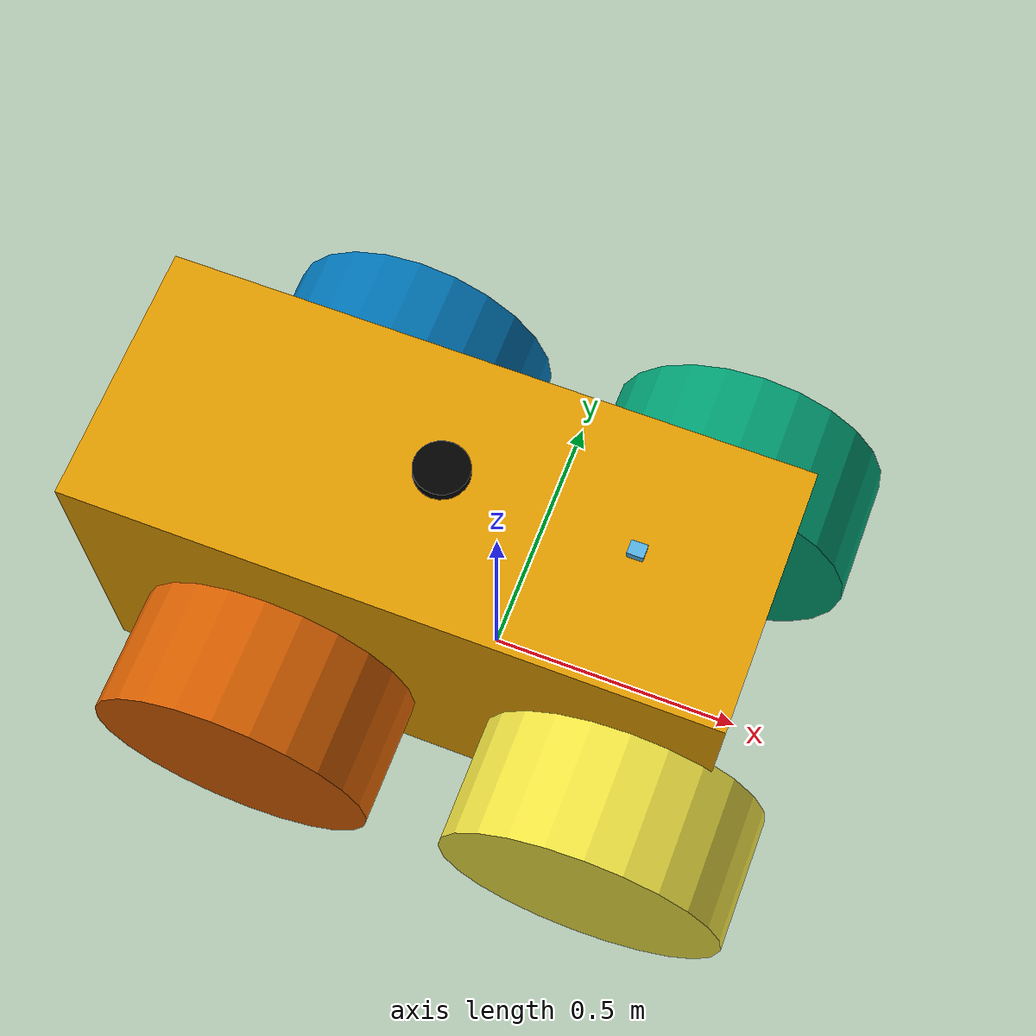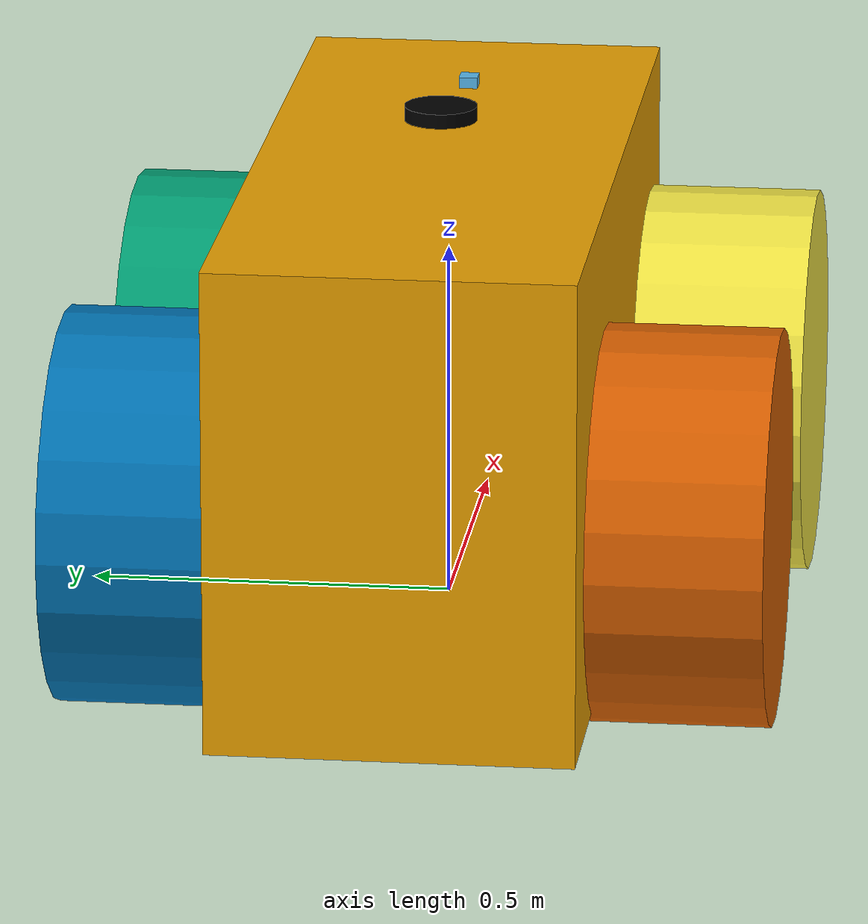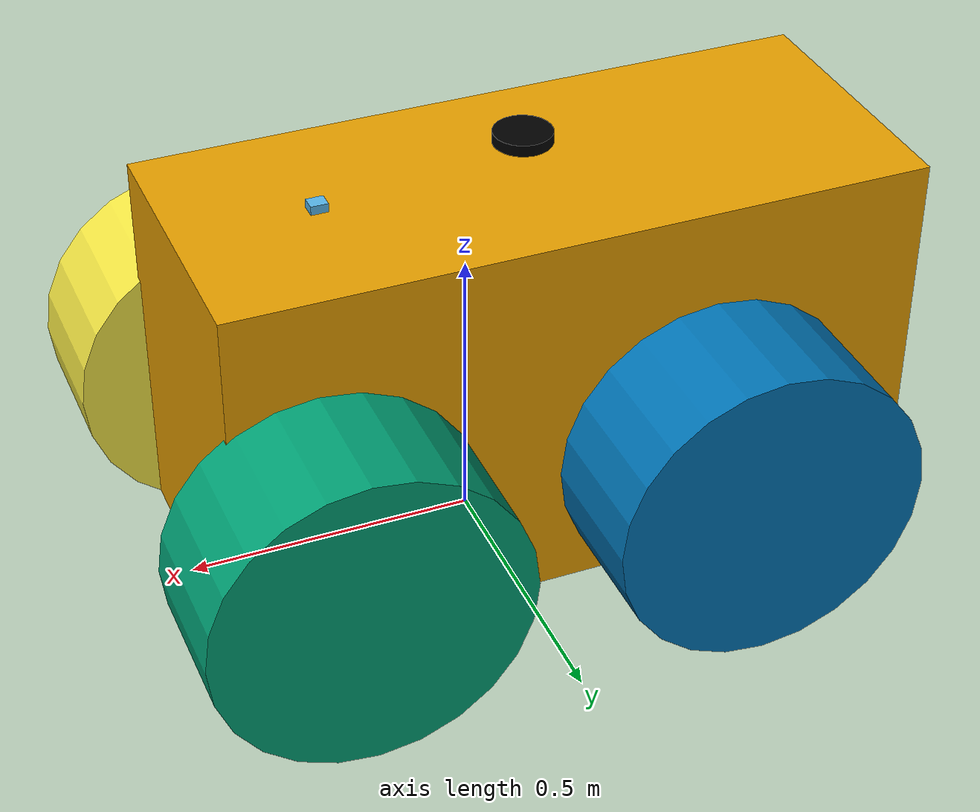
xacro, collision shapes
<?xml version="1.0"?>
<robot xmlns:xacro="http://wiki.ros.org/xacro" name="gen_6_microtractor">

  <!-- Arguments -->
  <xacro:arg name="use_sim" default="false"/>

  <!--                             TUNING DASHBOARD                             -->

  <!-- 1. ROBOT DIMENSIONS (Where the wheels sit) -->
  <xacro:property name="wheel_separation" value="0.72" /> <!-- RESTORED: Physical Track Width for Physics/RViz -->
  <xacro:property name="wheel_wheelbase"  value="0.68" /> <!-- Wheelbase: Front-to-Back distance -->
  <xacro:property name="axle_stagger_x"   value="0.00" /> <!-- Stagger REMOVED -->

  <!-- 2. CHASSIS POSITION (Where the body sits) -->
  <xacro:property name="wheel_xpos"       value="0.11" /> <!-- Moves Blue Chassis BACKWARDS relative to wheels -->

  <!-- 3. WHEEL GEOMETRY -->
  <xacro:property name="wheel_r" value="0.27" />

  <!-- 4. VISUAL MESH CONSTANTS (DO NOT CHANGE unless mesh changes) -->
  <!-- Calculated from Fusion 360 [166.483, 262.155, -606.833] -->
  <xacro:property name="fusion_x" value="0.166483" />
  <xacro:property name="fusion_y" value="0.262155" />
  <xacro:property name="fusion_z" value="-0.606833" />

  <!-- 5. MANUAL VISUAL CORRECTION (Decouples Visuals from Physics) -->
  <!-- PULLS the meshes inward while keeping the Red Physics Boxes at 0.72m -->
  <xacro:property name="visual_manual_y_offset" value="0.2" />
  <!-- 6. LIDAR POSITIONING (Invisible Sensor) -->
  <xacro:property name="lidar_x" value="0.25" />
  <xacro:property name="lidar_y" value="0.0" />
  <xacro:property name="lidar_z" value="0.4" />
  <xacro:property name="lidar_r" value="0.0" />
  <xacro:property name="lidar_p" value="0.0" />
  <xacro:property name="lidar_yaw" value="0.0" />
  <!-- 7. PHYSICS PROPERTIES (Mass in Kg) -->
  <xacro:property name="chassis_mass" value="400.0" /> <!-- Estimate: 100kg tractor body -->
  <xacro:property name="wheel_mass"   value="8" />  <!-- : 8kg per heavy fully inflated tire -->

  <!-- Includes -->

  <!-- Gazebo Sim Control Plugin (Specific for Microtractor) -->
  <xacro:if value="$(arg use_sim)">
    <gazebo>
        <plugin filename="libgz_ros2_control-system.so" name="gz_ros2_control::GazeboSimROS2ControlPlugin">
            <parameters>$(find magni_gazebo)/config/diff_drive_controller_microtractor.yaml</parameters>
        </plugin>
    </gazebo>
  </xacro:if>

  <!-- Inertial Macros (formerly from inertial.xacro) -->
  <xacro:macro name="cylinder_inertial_with_origin" params="radius length mass *origin">
    <inertial>
      <mass value="${mass}" />
      <xacro:insert_block name="origin" />
      <inertia ixx="${0.0833333 * mass * (3 * radius * radius + length * length)}" ixy="0.0" ixz="0.0"
               iyy="${0.0833333 * mass * (3 * radius * radius + length * length)}" iyz="0.0"
               izz="${0.5 * mass * radius * radius}" />
    </inertial>
  </xacro:macro>

  <xacro:macro name="box_inertial_with_origin" params="x y z mass *origin">
    <inertial>
      <mass value="${mass}" />
      <xacro:insert_block name="origin" />
      <inertia ixx="${0.0833333 * mass * (y*y + z*z)}" ixy="0.0" ixz="0.0"
               iyy="${0.0833333 * mass * (x*x + z*z)}" iyz="0.0"
               izz="${0.0833333 * mass * (x*x + y*y)}" />
    </inertial>
  </xacro:macro>

  <xacro:include filename="$(find magni_description)/urdf/sensors/raspi_camera.xacro" />
  <xacro:include filename="$(find magni_description)/urdf/sensors/gps_antenna.xacro" />
  <xacro:include filename="$(find magni_description)/urdf/sensors/ur_c1_lidar.xacro" />

  <!-- Robot base_link -->
  <link name="base_link">
    <visual>
      <origin xyz="${-wheel_xpos} 0 ${-wheel_r+0.071}" rpy="0 0 0" />
      <geometry>
        <!-- Reverting to OBJ because the DAE file (127MB) is causing Gazebo to crash (Segfault). -->
        <mesh filename="package://magni_description/meshes/gen6/chassis_microtractor.obj" scale="0.001 0.001 0.001" />
      </geometry>
    </visual>
    <collision>
	  <origin xyz="${-wheel_xpos} 0 ${-wheel_r+0.33}" rpy="0 0 0" />
      <geometry>
        <box size="1.200 0.495 0.665"/>
      </geometry>
    </collision>
    <xacro:box_inertial_with_origin  x="1.200" y="0.495" z="0.665" mass="${chassis_mass}">
      <origin xyz="-0.15 0 0.03" rpy="0 0 0" />
    </xacro:box_inertial_with_origin>
  </link>

  <!-- Fixed offset from the floor to the center of the wheels -->
  <link name="base_footprint"/>
  <joint name="base_footprint_joint" type="fixed">
    <parent link="base_footprint"/>
    <child link="base_link"/>
    <origin xyz="0 0 ${wheel_r}" rpy="0 0 0"/>
  </joint>

  <xacro:macro name="wheel" params="prefix reflect_x reflect_y">
    <link name="${prefix}_wheel">
      <visual>
        <!--
            VISUAL OFFSET (Centering + Manual Gap Compensation)
            Corrected to purely use Fusion offsets for centering, and rely on Joint for position.
        -->
        <origin xyz="${-fusion_z * reflect_y} ${-(fusion_x + visual_manual_y_offset) * reflect_y} ${-fusion_y}"
                rpy="${pi/2} 0 ${pi/2 if reflect_y == 1 else -pi/2}" />
        <geometry>
          <mesh filename="package://magni_description/meshes/gen6/wheel_microtractor.obj" scale="0.001 0.001 0.001" />
        </geometry>
      </visual>

      <collision>
        <!-- Collision is centered on the Joint (0,0,0) -->
        <origin xyz="0 0 0" rpy="${pi/2} 0 0" />
        <geometry>
          <cylinder radius="${wheel_r}" length="0.25"/>
        </geometry>
      </collision>

      <xacro:cylinder_inertial_with_origin radius="${wheel_r}" length="0.25" mass="${wheel_mass}">
        <origin xyz="0 0 0" rpy="${pi/2} 0 0" />
      </xacro:cylinder_inertial_with_origin>
    </link>

    <gazebo reference="${prefix}_wheel">
      <mu1 value="0.1"/>
      <mu2 value="0.1"/>
      <kp value="10000000.0" />
      <kd value="1.0" />
      <fdir1 value="1 0 0"/>
    </gazebo>

    <joint name="${prefix}_wheel_joint" type="continuous">
      <axis xyz="0 1 0" />
      <parent link="base_link"/>
      <child link="${prefix}_wheel"/>
      <!--
           PHYSICAL JOINT LOCATION
           We use 'wheel_separation' to define the width. Not the mesh offset.
           This places the Physics Box exactly at the specified Width.
      -->
      <origin xyz="${(wheel_wheelbase/2 * reflect_x) + (axle_stagger_x * reflect_y)} ${(wheel_separation/2) * reflect_y} -0.05" rpy="0 0 0"/>
    </joint>
  </xacro:macro>

  <!-- INSTANTIATE WHEELS USING SYSTEMATIC MACRO -->
  <xacro:wheel prefix="front_left"  reflect_x="1"  reflect_y="1" />
  <xacro:wheel prefix="front_right" reflect_x="1"  reflect_y="-1" />
  <xacro:wheel prefix="rear_left"   reflect_x="-1" reflect_y="1" />
  <xacro:wheel prefix="rear_right"  reflect_x="-1" reflect_y="-1" />

 <!-- ROS 2 Control block -->
  <ros2_control name="MagniSystem" type="system">
    <hardware>
      <xacro:if value="$(arg use_sim)">
        <plugin>gz_ros2_control/GazeboSimSystem</plugin>
      </xacro:if>
      <xacro:unless value="$(arg use_sim)">
        <plugin>ubiquity_motor_ros2/MotorHardware</plugin>
      </xacro:unless>
    </hardware>

    <joint name="front_left_wheel_joint">
      <command_interface name="velocity"/>
      <state_interface name="position"/>
      <state_interface name="velocity"/>
      <state_interface name="effort"/>
    </joint>

    <joint name="front_right_wheel_joint">
      <command_interface name="velocity"/>
      <state_interface name="position"/>
      <state_interface name="velocity"/>
      <state_interface name="effort"/>
    </joint>

    <joint name="rear_left_wheel_joint">
      <command_interface name="velocity"/>
      <state_interface name="position"/>
      <state_interface name="velocity"/>
      <state_interface name="effort"/>
    </joint>

    <joint name="rear_right_wheel_joint">
      <command_interface name="velocity"/>
      <state_interface name="position"/>
      <state_interface name="velocity"/>
      <state_interface name="effort"/>
    </joint>
  </ros2_control>

  <!-- Camera (Forward) -->
  <xacro:raspi_camera name="raspicam" connected_to="base_link">
    <origin xyz="0.10 0.0 0.20" rpy="0 0 0"/>
  </xacro:raspi_camera>

  <!-- GPS (Top/Back) -->
  <xacro:gps_antenna name="gps" parent="base_link" simulate="true">
     <origin xyz="-0.10 0.0 0.45" rpy="0 0 0"/>
  </xacro:gps_antenna>

  <!-- Lidar (Ubiquity Robotics C1) -->
  <!-- Using visualize_mesh="false" because the lidar is integrated into the chassis mesh -->
  <xacro:ur_c1_lidar name="laser" connected_to="base_link" visualize_mesh="false">
    <origin xyz="${lidar_x} ${lidar_y} ${lidar_z}" rpy="${lidar_r} ${lidar_p} ${lidar_yaw}"/>
  </xacro:ur_c1_lidar>

</robot>

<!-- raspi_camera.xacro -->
<robot xmlns:xacro="http://wiki.ros.org/xacro">

  <xacro:macro name="raspi_camera" params="name:='' connected_to:='' *origin">

    <xacro:unless value="${connected_to == ''}">
      <joint name="${name}_joint" type="fixed">
        <parent link="${connected_to}"/>
        <child link="${name}"/>
        <xacro:insert_block name="origin"/>
      </joint>
    </xacro:unless>

    <link name="${name}">
      <visual>
        <origin xyz="0 0 0" rpy="0 0 ${-pi/2}" />
        <geometry>
          <mesh filename="$(find magni_description)/meshes/sensors/raspi_camera.dae" />
        </geometry>
      </visual>
      <collision>
        <origin xyz="0 0 0" rpy="0 0 ${pi/2}" />
        <geometry>
          <box size="0.03 0.026 0.016"/>
        </geometry>
      </collision>
    </link>

    <!-- Additional link for camera sensor -->
    <link name="${name}_sensor"/>
    <joint name="${name}_sensor_joint" type="fixed">
      <parent link="${name}"/>
      <child link="${name}_sensor"/>
      <origin xyz="0.005 0 0" rpy="${-pi/2} 0 ${-pi/2}" />
    </joint>

    <!-- Gazebo sensor plugin. Gazebo sensor is attached to camera link (${name}) but publishes its messages to ${name}_sensor frame. -->
    <gazebo reference="${name}">
      <sensor type="camera" name="camera1">
        <visualize>false</visualize>
        <update_rate>30.0</update_rate>
        <camera name="raspi_camera">
          <horizontal_fov>1.086</horizontal_fov>
          <image>
            <width>640</width>
            <height>480</height>
            <format>R8G8B8</format>
          </image>
          <clip>
            <near>0.02</near>
            <far>300</far>
          </clip>
        </camera>
        <!-- Gazebo-ROS interface plugin -->
        <plugin name="camera_controller" filename="libgazebo_ros_camera.so">
          <alwaysOn>true</alwaysOn>
          <updateRate>0.0</updateRate>
          <cameraName></cameraName>
          <imageTopicName>${name}_node/image</imageTopicName>
          <cameraInfoTopicName>${name}_node/camera_info</cameraInfoTopicName>
          <frameName>${name}_sensor</frameName>
          <hackBaseline>0.07</hackBaseline>
          <distortionK1>0.0</distortionK1>
          <distortionK2>0.0</distortionK2>
          <distortionK3>0.0</distortionK3>
          <distortionT1>0.0</distortionT1>
          <distortionT2>0.0</distortionT2>
        </plugin>
      </sensor>
    </gazebo>

  </xacro:macro>

</robot>

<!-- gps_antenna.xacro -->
<robot xmlns:xacro="http://wiki.ros.org/xacro">
  <xacro:macro name="gps_antenna" params="name parent simulate:=false *origin">
    <joint name="${name}_joint" type="fixed">
      <xacro:insert_block name="origin" />
      <parent link="${parent}"/>
      <child link="${name}_link"/>
    </joint>
    <link name="${name}_link">
      <visual>
        <geometry>
          <cylinder radius="0.05" length="0.02"/>
        </geometry>
        <material name="black">
            <color rgba="0 0 0 1"/>
        </material>
      </visual>
      <collision>
        <geometry>
          <cylinder radius="0.05" length="0.02"/>
        </geometry>
      </collision>
    </link>

    <xacro:if value="${simulate}">
      <gazebo reference="${name}_link">
          <sensor name="${name}_sensor" type="navsat">
              <always_on>1</always_on>
              <update_rate>5.0</update_rate>
              <topic>gnss/fix</topic>
              <gz_frame_id>${name}_link</gz_frame_id>
              <navsat>
                  <position_sensing>
                      <horizontal>
                          <noise type="gaussian">
                              <mean>0.0</mean>
                              <stddev>0.00001</stddev>
                          </noise>
                      </horizontal>
                      <vertical>
                          <noise type="gaussian">
                              <mean>0.0</mean>
                              <stddev>0.00001</stddev>
                          </noise>
                      </vertical>
                  </position_sensing>
              </navsat>
          </sensor>
          <sensor name="${name}_imu" type="imu">
              <always_on>1</always_on>
              <update_rate>20.0</update_rate>
              <topic>gnss/imu</topic>
              <gz_frame_id>${name}_link</gz_frame_id>
              <pose>0 0 0 0 0 3.14159265</pose>
              <imu>
                <angular_velocity>
                  <x>
                    <noise type="gaussian">
                      <mean>0.0</mean>
                      <stddev>2e-4</stddev>
                    </noise>
                  </x>
                  <y>
                    <noise type="gaussian">
                      <mean>0.0</mean>
                      <stddev>2e-4</stddev>
                    </noise>
                  </y>
                  <z>
                    <noise type="gaussian">
                      <mean>0.0</mean>
                      <stddev>2e-4</stddev>
                    </noise>
                  </z>
                </angular_velocity>
                <linear_acceleration>
                  <x>
                    <noise type="gaussian">
                      <mean>0.0</mean>
                      <stddev>1.7e-2</stddev>
                    </noise>
                  </x>
                  <y>
                    <noise type="gaussian">
                      <mean>0.0</mean>
                      <stddev>1.7e-2</stddev>
                    </noise>
                  </y>
                  <z>
                    <noise type="gaussian">
                      <mean>0.0</mean>
                      <stddev>1.7e-2</stddev>
                    </noise>
                  </z>
                </linear_acceleration>
              </imu>
          </sensor>
      </gazebo>
    </xacro:if>
  </xacro:macro>
</robot>

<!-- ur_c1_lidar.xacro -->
<robot xmlns:xacro="http://wiki.ros.org/xacro">

  <xacro:macro name="ur_c1_lidar" params="name:='' connected_to:='' visualize_mesh:=true *origin">

  <xacro:unless value="${connected_to == ''}">
    <joint name="${name}_joint" type="fixed">
      <parent link="${connected_to}"/>
      <child link="${name}"/>
      <xacro:insert_block name="origin"/>
    </joint>
  </xacro:unless>

  <link name="${name}">
    <xacro:if value="${visualize_mesh}">
      <visual>
        <origin xyz="0 0 -0.03" rpy="0 0 0" />
        <geometry>
          <mesh filename="package://magni_description/meshes/sensors/ur_c1_lidar.dae" />
        </geometry>
      </visual>
    </xacro:if>
    <collision>
      <origin xyz="0 0 0" rpy="0 0 0" />
      <geometry>
        <box size="0.03 0.026 0.016"/>
      </geometry>
    </collision>
  </link>

  <gazebo reference="${name}">
    <sensor type="gpu_lidar" name="${name}_sensor">
      <topic>scan</topic>
      <gz_frame_id>${name}</gz_frame_id>
      <pose>0 0 0 0 0 0</pose>
      <visualize>false</visualize>
      <update_rate>20</update_rate>
      <ray>
        <scan>
          <horizontal>
            <samples>811</samples>
            <min_angle>-3.14</min_angle>
            <max_angle>3.14</max_angle>
          </horizontal>
        </scan>
        <range>
          <min>0.05</min>
          <max>50.0</max>
          <resolution>0.01</resolution>
        </range>
        <noise>
          <type>gaussian</type>
          <mean>0.0</mean>
          <stddev>0.01</stddev>
        </noise>
      </ray>
    </sensor>
  </gazebo>

  </xacro:macro>

</robot>
